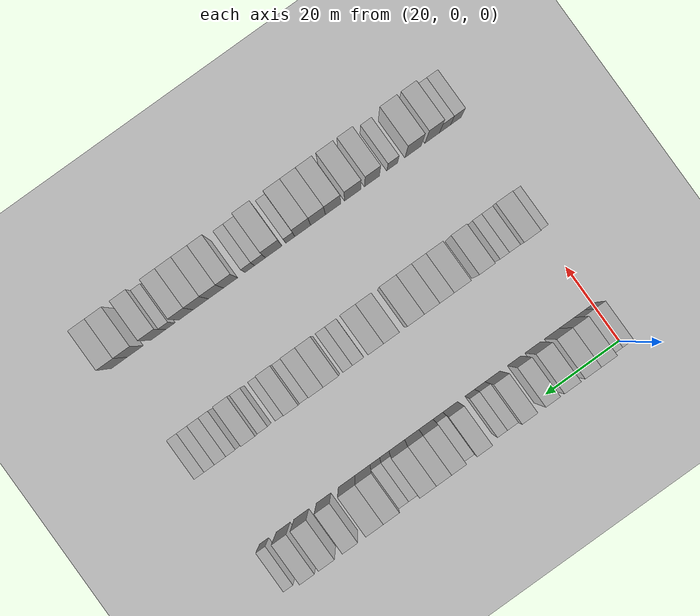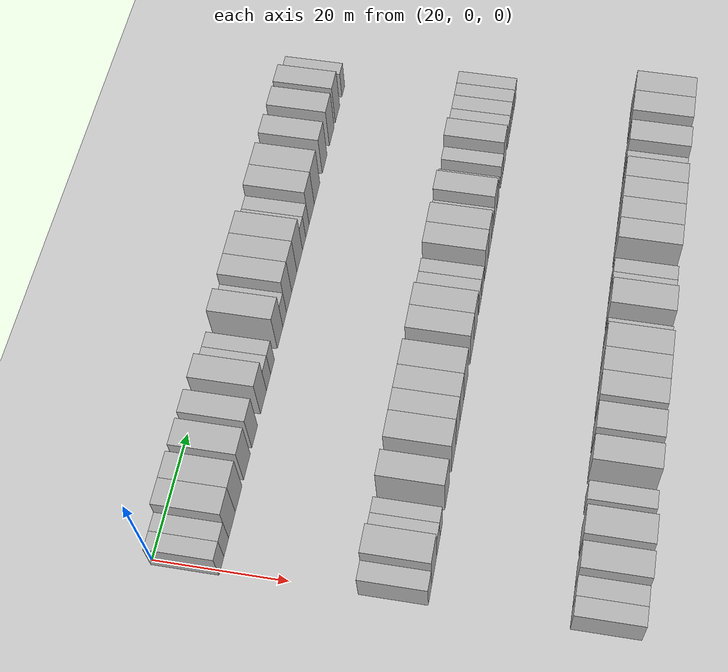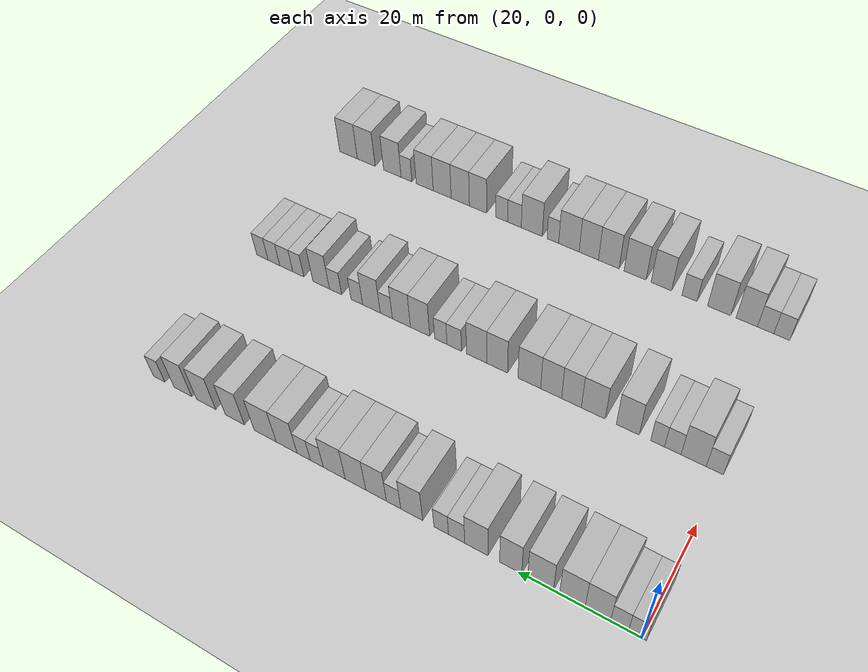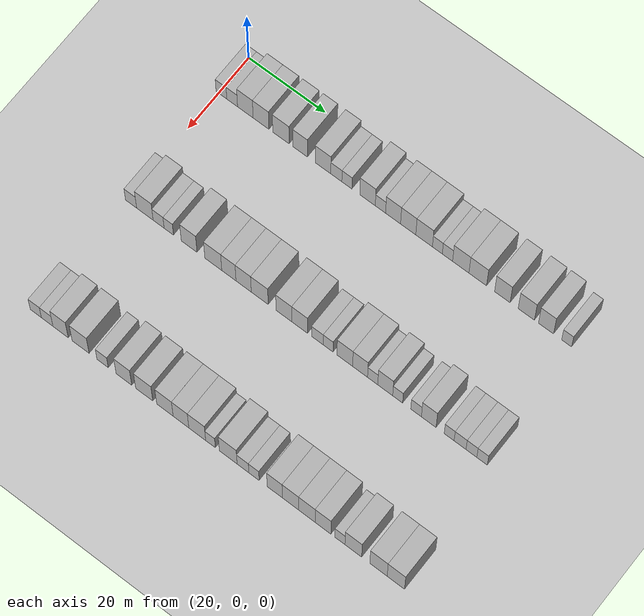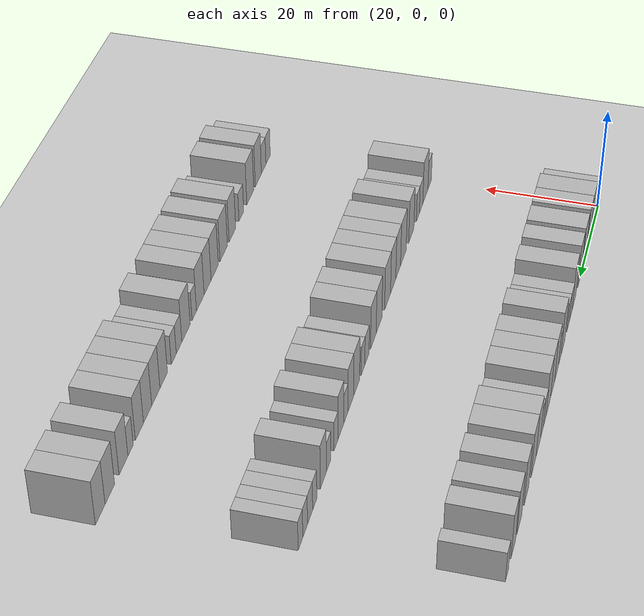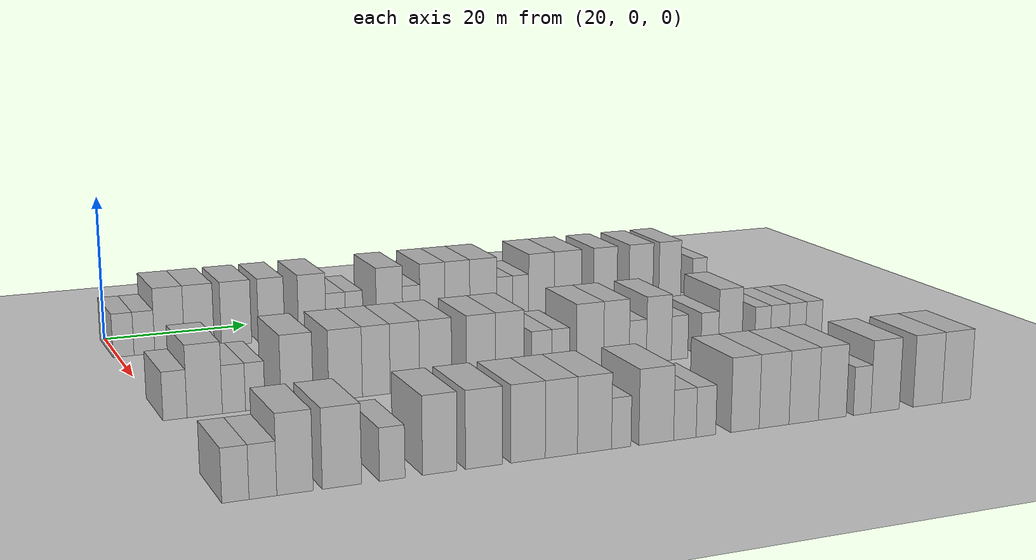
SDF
<sdf version="1.6">
 <world name="default">
  <include>
   <name>ground_plane_2</name>
   <uri>model://HANNAS_ground_plane</uri>
   <pose>100 0 0  0 0 0</pose>
  </include>
  <model name="building_72">
   <static>1</static>
   <pose>25.0000 0.7263 0 0.000000 0.000000 0.000000</pose>
   <link name="link">
    <pose>0 0 3.00 0 0 0</pose>
    <collision name="collision"><geometry><box><size>10.0000 2.8007 6.0000</size></box></geometry></collision>
    <visual name="visual">
     <cast_shadows>0</cast_shadows>
     <geometry><box><size>10.0000 2.8007 6.0000</size></box></geometry>
     <material>
      <script>
       <uri>model://HANNAS_wall/materials/scripts</uri>
       <uri>model://HANNAS_wall/materials/textures</uri>
       <name>vrc/HANNAS_wall</name>
      </script>
     </material>
    </visual>
   </link>
  </model>
  <model name="building_73">
   <static>1</static>
   <pose>25.0000 3.5335 0 0.000000 0.000000 0.000000</pose>
   <link name="link">
    <pose>0 0 3.00 0 0 0</pose>
    <collision name="collision"><geometry><box><size>10.0000 2.8138 6.0000</size></box></geometry></collision>
    <visual name="visual">
     <cast_shadows>0</cast_shadows>
     <geometry><box><size>10.0000 2.8138 6.0000</size></box></geometry>
     <material>
      <script>
       <uri>model://HANNAS_wall/materials/scripts</uri>
       <uri>model://HANNAS_wall/materials/textures</uri>
       <name>vrc/HANNAS_wall</name>
      </script>
     </material>
    </visual>
   </link>
  </model>
  <model name="building_74">
   <static>1</static>
   <pose>25.0000 6.9694 0 0.000000 0.000000 0.000000</pose>
   <link name="link">
    <pose>0 0 4.50 0 0 0</pose>
    <collision name="collision"><geometry><box><size>10.0000 4.0579 9.0000</size></box></geometry></collision>
    <visual name="visual">
     <cast_shadows>0</cast_shadows>
     <geometry><box><size>10.0000 4.0579 9.0000</size></box></geometry>
     <material>
      <script>
       <uri>model://HANNAS_wall/materials/scripts</uri>
       <uri>model://HANNAS_wall/materials/textures</uri>
       <name>vrc/HANNAS_wall</name>
      </script>
     </material>
    </visual>
   </link>
  </model>
  <model name="building_75">
   <static>1</static>
   <pose>25.0000 11.0529 0 0.000000 0.000000 0.000000</pose>
   <link name="link">
    <pose>0 0 4.50 0 0 0</pose>
    <collision name="collision"><geometry><box><size>10.0000 4.1092 9.0000</size></box></geometry></collision>
    <visual name="visual">
     <cast_shadows>0</cast_shadows>
     <geometry><box><size>10.0000 4.1092 9.0000</size></box></geometry>
     <material>
      <script>
       <uri>model://HANNAS_wall/materials/scripts</uri>
       <uri>model://HANNAS_wall/materials/textures</uri>
       <name>vrc/HANNAS_wall</name>
      </script>
     </material>
    </visual>
   </link>
  </model>
  <model name="building_76">
   <static>1</static>
   <pose>25.0000 16.2269 0 0.000000 0.000000 0.000000</pose>
   <link name="link">
    <pose>0 0 4.50 0 0 0</pose>
    <collision name="collision"><geometry><box><size>10.0000 4.2388 9.0000</size></box></geometry></collision>
    <visual name="visual">
     <cast_shadows>0</cast_shadows>
     <geometry><box><size>10.0000 4.2388 9.0000</size></box></geometry>
     <material>
      <script>
       <uri>model://HANNAS_wall/materials/scripts</uri>
       <uri>model://HANNAS_wall/materials/textures</uri>
       <name>vrc/HANNAS_wall</name>
      </script>
     </material>
    </visual>
   </link>
  </model>
  <model name="building_77">
   <static>1</static>
   <pose>25.0000 21.2065 0 0.000000 0.000000 0.000000</pose>
   <link name="link">
    <pose>0 0 4.50 0 0 0</pose>
    <collision name="collision"><geometry><box><size>10.0000 3.7204 9.0000</size></box></geometry></collision>
    <visual name="visual">
     <cast_shadows>0</cast_shadows>
     <geometry><box><size>10.0000 3.7204 9.0000</size></box></geometry>
     <material>
      <script>
       <uri>model://HANNAS_wall/materials/scripts</uri>
       <uri>model://HANNAS_wall/materials/textures</uri>
       <name>vrc/HANNAS_wall</name>
      </script>
     </material>
    </visual>
   </link>
  </model>
  <model name="building_78">
   <static>1</static>
   <pose>25.0000 27.0637 0 0.000000 0.000000 0.000000</pose>
   <link name="link">
    <pose>0 0 4.50 0 0 0</pose>
    <collision name="collision"><geometry><box><size>10.0000 3.9941 9.0000</size></box></geometry></collision>
    <visual name="visual">
     <cast_shadows>0</cast_shadows>
     <geometry><box><size>10.0000 3.9941 9.0000</size></box></geometry>
     <material>
      <script>
       <uri>model://HANNAS_wall/materials/scripts</uri>
       <uri>model://HANNAS_wall/materials/textures</uri>
       <name>vrc/HANNAS_wall</name>
      </script>
     </material>
    </visual>
   </link>
  </model>
  <model name="building_79">
   <static>1</static>
   <pose>25.0000 30.4862 0 0.000000 0.000000 0.000000</pose>
   <link name="link">
    <pose>0 0 3.00 0 0 0</pose>
    <collision name="collision"><geometry><box><size>10.0000 2.8509 6.0000</size></box></geometry></collision>
    <visual name="visual">
     <cast_shadows>0</cast_shadows>
     <geometry><box><size>10.0000 2.8509 6.0000</size></box></geometry>
     <material>
      <script>
       <uri>model://HANNAS_wall/materials/scripts</uri>
       <uri>model://HANNAS_wall/materials/textures</uri>
       <name>vrc/HANNAS_wall</name>
      </script>
     </material>
    </visual>
   </link>
  </model>
  <model name="building_80">
   <static>1</static>
   <pose>25.0000 33.2006 0 0.000000 0.000000 0.000000</pose>
   <link name="link">
    <pose>0 0 3.00 0 0 0</pose>
    <collision name="collision"><geometry><box><size>10.0000 2.5778 6.0000</size></box></geometry></collision>
    <visual name="visual">
     <cast_shadows>0</cast_shadows>
     <geometry><box><size>10.0000 2.5778 6.0000</size></box></geometry>
     <material>
      <script>
       <uri>model://HANNAS_wall/materials/scripts</uri>
       <uri>model://HANNAS_wall/materials/textures</uri>
       <name>vrc/HANNAS_wall</name>
      </script>
     </material>
    </visual>
   </link>
  </model>
  <model name="building_81">
   <static>1</static>
   <pose>25.0000 38.4661 0 0.000000 0.000000 0.000000</pose>
   <link name="link">
    <pose>0 0 4.50 0 0 0</pose>
    <collision name="collision"><geometry><box><size>10.0000 3.9533 9.0000</size></box></geometry></collision>
    <visual name="visual">
     <cast_shadows>0</cast_shadows>
     <geometry><box><size>10.0000 3.9533 9.0000</size></box></geometry>
     <material>
      <script>
       <uri>model://HANNAS_wall/materials/scripts</uri>
       <uri>model://HANNAS_wall/materials/textures</uri>
       <name>vrc/HANNAS_wall</name>
      </script>
     </material>
    </visual>
   </link>
  </model>
  <model name="building_82">
   <static>1</static>
   <pose>25.0000 41.7570 0 0.000000 0.000000 0.000000</pose>
   <link name="link">
    <pose>0 0 3.00 0 0 0</pose>
    <collision name="collision"><geometry><box><size>10.0000 2.6285 6.0000</size></box></geometry></collision>
    <visual name="visual">
     <cast_shadows>0</cast_shadows>
     <geometry><box><size>10.0000 2.6285 6.0000</size></box></geometry>
     <material>
      <script>
       <uri>model://HANNAS_wall/materials/scripts</uri>
       <uri>model://HANNAS_wall/materials/textures</uri>
       <name>vrc/HANNAS_wall</name>
      </script>
     </material>
    </visual>
   </link>
  </model>
  <model name="building_83">
   <static>1</static>
   <pose>25.0000 44.9753 0 0.000000 0.000000 0.000000</pose>
   <link name="link">
    <pose>0 0 4.50 0 0 0</pose>
    <collision name="collision"><geometry><box><size>10.0000 3.8082 9.0000</size></box></geometry></collision>
    <visual name="visual">
     <cast_shadows>0</cast_shadows>
     <geometry><box><size>10.0000 3.8082 9.0000</size></box></geometry>
     <material>
      <script>
       <uri>model://HANNAS_wall/materials/scripts</uri>
       <uri>model://HANNAS_wall/materials/textures</uri>
       <name>vrc/HANNAS_wall</name>
      </script>
     </material>
    </visual>
   </link>
  </model>
  <model name="building_84">
   <static>1</static>
   <pose>25.0000 48.8112 0 0.000000 0.000000 0.000000</pose>
   <link name="link">
    <pose>0 0 4.50 0 0 0</pose>
    <collision name="collision"><geometry><box><size>10.0000 3.8636 9.0000</size></box></geometry></collision>
    <visual name="visual">
     <cast_shadows>0</cast_shadows>
     <geometry><box><size>10.0000 3.8636 9.0000</size></box></geometry>
     <material>
      <script>
       <uri>model://HANNAS_wall/materials/scripts</uri>
       <uri>model://HANNAS_wall/materials/textures</uri>
       <name>vrc/HANNAS_wall</name>
      </script>
     </material>
    </visual>
   </link>
  </model>
  <model name="building_85">
   <static>1</static>
   <pose>25.0000 52.8440 0 0.000000 0.000000 0.000000</pose>
   <link name="link">
    <pose>0 0 4.50 0 0 0</pose>
    <collision name="collision"><geometry><box><size>10.0000 4.2020 9.0000</size></box></geometry></collision>
    <visual name="visual">
     <cast_shadows>0</cast_shadows>
     <geometry><box><size>10.0000 4.2020 9.0000</size></box></geometry>
     <material>
      <script>
       <uri>model://HANNAS_wall/materials/scripts</uri>
       <uri>model://HANNAS_wall/materials/textures</uri>
       <name>vrc/HANNAS_wall</name>
      </script>
     </material>
    </visual>
   </link>
  </model>
  <model name="building_86">
   <static>1</static>
   <pose>25.0000 56.1912 0 0.000000 0.000000 0.000000</pose>
   <link name="link">
    <pose>0 0 3.00 0 0 0</pose>
    <collision name="collision"><geometry><box><size>10.0000 2.4923 6.0000</size></box></geometry></collision>
    <visual name="visual">
     <cast_shadows>0</cast_shadows>
     <geometry><box><size>10.0000 2.4923 6.0000</size></box></geometry>
     <material>
      <script>
       <uri>model://HANNAS_wall/materials/scripts</uri>
       <uri>model://HANNAS_wall/materials/textures</uri>
       <name>vrc/HANNAS_wall</name>
      </script>
     </material>
    </visual>
   </link>
  </model>
  <model name="building_87">
   <static>1</static>
   <pose>25.0000 58.7335 0 0.000000 0.000000 0.000000</pose>
   <link name="link">
    <pose>0 0 3.00 0 0 0</pose>
    <collision name="collision"><geometry><box><size>10.0000 2.5922 6.0000</size></box></geometry></collision>
    <visual name="visual">
     <cast_shadows>0</cast_shadows>
     <geometry><box><size>10.0000 2.5922 6.0000</size></box></geometry>
     <material>
      <script>
       <uri>model://HANNAS_wall/materials/scripts</uri>
       <uri>model://HANNAS_wall/materials/textures</uri>
       <name>vrc/HANNAS_wall</name>
      </script>
     </material>
    </visual>
   </link>
  </model>
  <model name="building_88">
   <static>1</static>
   <pose>25.0000 62.0854 0 0.000000 0.000000 0.000000</pose>
   <link name="link">
    <pose>0 0 4.50 0 0 0</pose>
    <collision name="collision"><geometry><box><size>10.0000 4.1117 9.0000</size></box></geometry></collision>
    <visual name="visual">
     <cast_shadows>0</cast_shadows>
     <geometry><box><size>10.0000 4.1117 9.0000</size></box></geometry>
     <material>
      <script>
       <uri>model://HANNAS_wall/materials/scripts</uri>
       <uri>model://HANNAS_wall/materials/textures</uri>
       <name>vrc/HANNAS_wall</name>
      </script>
     </material>
    </visual>
   </link>
  </model>
  <model name="building_89">
   <static>1</static>
   <pose>25.0000 66.3556 0 0.000000 0.000000 0.000000</pose>
   <link name="link">
    <pose>0 0 4.50 0 0 0</pose>
    <collision name="collision"><geometry><box><size>10.0000 4.4288 9.0000</size></box></geometry></collision>
    <visual name="visual">
     <cast_shadows>0</cast_shadows>
     <geometry><box><size>10.0000 4.4288 9.0000</size></box></geometry>
     <material>
      <script>
       <uri>model://HANNAS_wall/materials/scripts</uri>
       <uri>model://HANNAS_wall/materials/textures</uri>
       <name>vrc/HANNAS_wall</name>
      </script>
     </material>
    </visual>
   </link>
  </model>
  <model name="building_90">
   <static>1</static>
   <pose>25.0000 72.5190 0 0.000000 0.000000 0.000000</pose>
   <link name="link">
    <pose>0 0 4.50 0 0 0</pose>
    <collision name="collision"><geometry><box><size>10.0000 3.8980 9.0000</size></box></geometry></collision>
    <visual name="visual">
     <cast_shadows>0</cast_shadows>
     <geometry><box><size>10.0000 3.8980 9.0000</size></box></geometry>
     <material>
      <script>
       <uri>model://HANNAS_wall/materials/scripts</uri>
       <uri>model://HANNAS_wall/materials/textures</uri>
       <name>vrc/HANNAS_wall</name>
      </script>
     </material>
    </visual>
   </link>
  </model>
  <model name="building_91">
   <static>1</static>
   <pose>25.0000 78.4902 0 0.000000 0.000000 0.000000</pose>
   <link name="link">
    <pose>0 0 4.50 0 0 0</pose>
    <collision name="collision"><geometry><box><size>10.0000 4.0445 9.0000</size></box></geometry></collision>
    <visual name="visual">
     <cast_shadows>0</cast_shadows>
     <geometry><box><size>10.0000 4.0445 9.0000</size></box></geometry>
     <material>
      <script>
       <uri>model://HANNAS_wall/materials/scripts</uri>
       <uri>model://HANNAS_wall/materials/textures</uri>
       <name>vrc/HANNAS_wall</name>
      </script>
     </material>
    </visual>
   </link>
  </model>
  <model name="building_92">
   <static>1</static>
   <pose>25.0000 83.3860 0 0.000000 0.000000 0.000000</pose>
   <link name="link">
    <pose>0 0 4.50 0 0 0</pose>
    <collision name="collision"><geometry><box><size>10.0000 3.7471 9.0000</size></box></geometry></collision>
    <visual name="visual">
     <cast_shadows>0</cast_shadows>
     <geometry><box><size>10.0000 3.7471 9.0000</size></box></geometry>
     <material>
      <script>
       <uri>model://HANNAS_wall/materials/scripts</uri>
       <uri>model://HANNAS_wall/materials/textures</uri>
       <name>vrc/HANNAS_wall</name>
      </script>
     </material>
    </visual>
   </link>
  </model>
  <model name="building_93">
   <static>1</static>
   <pose>25.0000 88.4916 0 0.000000 0.000000 0.000000</pose>
   <link name="link">
    <pose>0 0 3.00 0 0 0</pose>
    <collision name="collision"><geometry><box><size>10.0000 2.4641 6.0000</size></box></geometry></collision>
    <visual name="visual">
     <cast_shadows>0</cast_shadows>
     <geometry><box><size>10.0000 2.4641 6.0000</size></box></geometry>
     <material>
      <script>
       <uri>model://HANNAS_wall/materials/scripts</uri>
       <uri>model://HANNAS_wall/materials/textures</uri>
       <name>vrc/HANNAS_wall</name>
      </script>
     </material>
    </visual>
   </link>
  </model>
  <model name="building_209">
   <static>1</static>
   <pose>55.0000 1.1675 0 0.000000 0.000000 0.000000</pose>
   <link name="link">
    <pose>0 0 3.00 0 0 0</pose>
    <collision name="collision"><geometry><box><size>10.0000 2.8977 6.0000</size></box></geometry></collision>
    <visual name="visual">
     <cast_shadows>0</cast_shadows>
     <geometry><box><size>10.0000 2.8977 6.0000</size></box></geometry>
     <material>
      <script>
       <uri>model://HANNAS_wall/materials/scripts</uri>
       <uri>model://HANNAS_wall/materials/textures</uri>
       <name>vrc/HANNAS_wall</name>
      </script>
     </material>
    </visual>
   </link>
  </model>
  <model name="building_210">
   <static>1</static>
   <pose>55.0000 4.7603 0 0.000000 0.000000 0.000000</pose>
   <link name="link">
    <pose>0 0 4.50 0 0 0</pose>
    <collision name="collision"><geometry><box><size>10.0000 4.2881 9.0000</size></box></geometry></collision>
    <visual name="visual">
     <cast_shadows>0</cast_shadows>
     <geometry><box><size>10.0000 4.2881 9.0000</size></box></geometry>
     <material>
      <script>
       <uri>model://HANNAS_wall/materials/scripts</uri>
       <uri>model://HANNAS_wall/materials/textures</uri>
       <name>vrc/HANNAS_wall</name>
      </script>
     </material>
    </visual>
   </link>
  </model>
  <model name="building_211">
   <static>1</static>
   <pose>55.0000 8.3292 0 0.000000 0.000000 0.000000</pose>
   <link name="link">
    <pose>0 0 3.00 0 0 0</pose>
    <collision name="collision"><geometry><box><size>10.0000 2.8497 6.0000</size></box></geometry></collision>
    <visual name="visual">
     <cast_shadows>0</cast_shadows>
     <geometry><box><size>10.0000 2.8497 6.0000</size></box></geometry>
     <material>
      <script>
       <uri>model://HANNAS_wall/materials/scripts</uri>
       <uri>model://HANNAS_wall/materials/textures</uri>
       <name>vrc/HANNAS_wall</name>
      </script>
     </material>
    </visual>
   </link>
  </model>
  <model name="building_212">
   <static>1</static>
   <pose>55.0000 10.9634 0 0.000000 0.000000 0.000000</pose>
   <link name="link">
    <pose>0 0 3.00 0 0 0</pose>
    <collision name="collision"><geometry><box><size>10.0000 2.4188 6.0000</size></box></geometry></collision>
    <visual name="visual">
     <cast_shadows>0</cast_shadows>
     <geometry><box><size>10.0000 2.4188 6.0000</size></box></geometry>
     <material>
      <script>
       <uri>model://HANNAS_wall/materials/scripts</uri>
       <uri>model://HANNAS_wall/materials/textures</uri>
       <name>vrc/HANNAS_wall</name>
      </script>
     </material>
    </visual>
   </link>
  </model>
  <model name="building_213">
   <static>1</static>
   <pose>55.0000 16.2072 0 0.000000 0.000000 0.000000</pose>
   <link name="link">
    <pose>0 0 4.50 0 0 0</pose>
    <collision name="collision"><geometry><box><size>10.0000 4.0687 9.0000</size></box></geometry></collision>
    <visual name="visual">
     <cast_shadows>0</cast_shadows>
     <geometry><box><size>10.0000 4.0687 9.0000</size></box></geometry>
     <material>
      <script>
       <uri>model://HANNAS_wall/materials/scripts</uri>
       <uri>model://HANNAS_wall/materials/textures</uri>
       <name>vrc/HANNAS_wall</name>
      </script>
     </material>
    </visual>
   </link>
  </model>
  <model name="building_214">
   <static>1</static>
   <pose>55.0000 22.4107 0 0.000000 0.000000 0.000000</pose>
   <link name="link">
    <pose>0 0 4.50 0 0 0</pose>
    <collision name="collision"><geometry><box><size>10.0000 4.3383 9.0000</size></box></geometry></collision>
    <visual name="visual">
     <cast_shadows>0</cast_shadows>
     <geometry><box><size>10.0000 4.3383 9.0000</size></box></geometry>
     <material>
      <script>
       <uri>model://HANNAS_wall/materials/scripts</uri>
       <uri>model://HANNAS_wall/materials/textures</uri>
       <name>vrc/HANNAS_wall</name>
      </script>
     </material>
    </visual>
   </link>
  </model>
  <model name="building_215">
   <static>1</static>
   <pose>55.0000 26.4033 0 0.000000 0.000000 0.000000</pose>
   <link name="link">
    <pose>0 0 4.50 0 0 0</pose>
    <collision name="collision"><geometry><box><size>10.0000 3.6468 9.0000</size></box></geometry></collision>
    <visual name="visual">
     <cast_shadows>0</cast_shadows>
     <geometry><box><size>10.0000 3.6468 9.0000</size></box></geometry>
     <material>
      <script>
       <uri>model://HANNAS_wall/materials/scripts</uri>
       <uri>model://HANNAS_wall/materials/textures</uri>
       <name>vrc/HANNAS_wall</name>
      </script>
     </material>
    </visual>
   </link>
  </model>
  <model name="building_216">
   <static>1</static>
   <pose>55.0000 30.1789 0 0.000000 0.000000 0.000000</pose>
   <link name="link">
    <pose>0 0 4.50 0 0 0</pose>
    <collision name="collision"><geometry><box><size>10.0000 3.9045 9.0000</size></box></geometry></collision>
    <visual name="visual">
     <cast_shadows>0</cast_shadows>
     <geometry><box><size>10.0000 3.9045 9.0000</size></box></geometry>
     <material>
      <script>
       <uri>model://HANNAS_wall/materials/scripts</uri>
       <uri>model://HANNAS_wall/materials/textures</uri>
       <name>vrc/HANNAS_wall</name>
      </script>
     </material>
    </visual>
   </link>
  </model>
  <model name="building_217">
   <static>1</static>
   <pose>55.0000 34.2883 0 0.000000 0.000000 0.000000</pose>
   <link name="link">
    <pose>0 0 4.50 0 0 0</pose>
    <collision name="collision"><geometry><box><size>10.0000 4.3143 9.0000</size></box></geometry></collision>
    <visual name="visual">
     <cast_shadows>0</cast_shadows>
     <geometry><box><size>10.0000 4.3143 9.0000</size></box></geometry>
     <material>
      <script>
       <uri>model://HANNAS_wall/materials/scripts</uri>
       <uri>model://HANNAS_wall/materials/textures</uri>
       <name>vrc/HANNAS_wall</name>
      </script>
     </material>
    </visual>
   </link>
  </model>
  <model name="building_218">
   <static>1</static>
   <pose>55.0000 40.4533 0 0.000000 0.000000 0.000000</pose>
   <link name="link">
    <pose>0 0 4.50 0 0 0</pose>
    <collision name="collision"><geometry><box><size>10.0000 4.0157 9.0000</size></box></geometry></collision>
    <visual name="visual">
     <cast_shadows>0</cast_shadows>
     <geometry><box><size>10.0000 4.0157 9.0000</size></box></geometry>
     <material>
      <script>
       <uri>model://HANNAS_wall/materials/scripts</uri>
       <uri>model://HANNAS_wall/materials/textures</uri>
       <name>vrc/HANNAS_wall</name>
      </script>
     </material>
    </visual>
   </link>
  </model>
  <model name="building_219">
   <static>1</static>
   <pose>55.0000 44.4444 0 0.000000 0.000000 0.000000</pose>
   <link name="link">
    <pose>0 0 4.50 0 0 0</pose>
    <collision name="collision"><geometry><box><size>10.0000 3.9667 9.0000</size></box></geometry></collision>
    <visual name="visual">
     <cast_shadows>0</cast_shadows>
     <geometry><box><size>10.0000 3.9667 9.0000</size></box></geometry>
     <material>
      <script>
       <uri>model://HANNAS_wall/materials/scripts</uri>
       <uri>model://HANNAS_wall/materials/textures</uri>
       <name>vrc/HANNAS_wall</name>
      </script>
     </material>
    </visual>
   </link>
  </model>
  <model name="building_220">
   <static>1</static>
   <pose>55.0000 48.8894 0 0.000000 0.000000 0.000000</pose>
   <link name="link">
    <pose>0 0 3.00 0 0 0</pose>
    <collision name="collision"><geometry><box><size>10.0000 2.9233 6.0000</size></box></geometry></collision>
    <visual name="visual">
     <cast_shadows>0</cast_shadows>
     <geometry><box><size>10.0000 2.9233 6.0000</size></box></geometry>
     <material>
      <script>
       <uri>model://HANNAS_wall/materials/scripts</uri>
       <uri>model://HANNAS_wall/materials/textures</uri>
       <name>vrc/HANNAS_wall</name>
      </script>
     </material>
    </visual>
   </link>
  </model>
  <model name="building_221">
   <static>1</static>
   <pose>55.0000 51.5944 0 0.000000 0.000000 0.000000</pose>
   <link name="link">
    <pose>0 0 3.00 0 0 0</pose>
    <collision name="collision"><geometry><box><size>10.0000 2.4867 6.0000</size></box></geometry></collision>
    <visual name="visual">
     <cast_shadows>0</cast_shadows>
     <geometry><box><size>10.0000 2.4867 6.0000</size></box></geometry>
     <material>
      <script>
       <uri>model://HANNAS_wall/materials/scripts</uri>
       <uri>model://HANNAS_wall/materials/textures</uri>
       <name>vrc/HANNAS_wall</name>
      </script>
     </material>
    </visual>
   </link>
  </model>
  <model name="building_222">
   <static>1</static>
   <pose>55.0000 55.8043 0 0.000000 0.000000 0.000000</pose>
   <link name="link">
    <pose>0 0 4.50 0 0 0</pose>
    <collision name="collision"><geometry><box><size>10.0000 3.9330 9.0000</size></box></geometry></collision>
    <visual name="visual">
     <cast_shadows>0</cast_shadows>
     <geometry><box><size>10.0000 3.9330 9.0000</size></box></geometry>
     <material>
      <script>
       <uri>model://HANNAS_wall/materials/scripts</uri>
       <uri>model://HANNAS_wall/materials/textures</uri>
       <name>vrc/HANNAS_wall</name>
      </script>
     </material>
    </visual>
   </link>
  </model>
  <model name="building_223">
   <static>1</static>
   <pose>55.0000 59.6422 0 0.000000 0.000000 0.000000</pose>
   <link name="link">
    <pose>0 0 4.50 0 0 0</pose>
    <collision name="collision"><geometry><box><size>10.0000 3.7430 9.0000</size></box></geometry></collision>
    <visual name="visual">
     <cast_shadows>0</cast_shadows>
     <geometry><box><size>10.0000 3.7430 9.0000</size></box></geometry>
     <material>
      <script>
       <uri>model://HANNAS_wall/materials/scripts</uri>
       <uri>model://HANNAS_wall/materials/textures</uri>
       <name>vrc/HANNAS_wall</name>
      </script>
     </material>
    </visual>
   </link>
  </model>
  <model name="building_224">
   <static>1</static>
   <pose>55.0000 62.7873 0 0.000000 0.000000 0.000000</pose>
   <link name="link">
    <pose>0 0 3.00 0 0 0</pose>
    <collision name="collision"><geometry><box><size>10.0000 2.5471 6.0000</size></box></geometry></collision>
    <visual name="visual">
     <cast_shadows>0</cast_shadows>
     <geometry><box><size>10.0000 2.5471 6.0000</size></box></geometry>
     <material>
      <script>
       <uri>model://HANNAS_wall/materials/scripts</uri>
       <uri>model://HANNAS_wall/materials/textures</uri>
       <name>vrc/HANNAS_wall</name>
      </script>
     </material>
    </visual>
   </link>
  </model>
  <model name="building_225">
   <static>1</static>
   <pose>55.0000 65.9283 0 0.000000 0.000000 0.000000</pose>
   <link name="link">
    <pose>0 0 4.50 0 0 0</pose>
    <collision name="collision"><geometry><box><size>10.0000 3.7349 9.0000</size></box></geometry></collision>
    <visual name="visual">
     <cast_shadows>0</cast_shadows>
     <geometry><box><size>10.0000 3.7349 9.0000</size></box></geometry>
     <material>
      <script>
       <uri>model://HANNAS_wall/materials/scripts</uri>
       <uri>model://HANNAS_wall/materials/textures</uri>
       <name>vrc/HANNAS_wall</name>
      </script>
     </material>
    </visual>
   </link>
  </model>
  <model name="building_226">
   <static>1</static>
   <pose>55.0000 69.0328 0 0.000000 0.000000 0.000000</pose>
   <link name="link">
    <pose>0 0 3.00 0 0 0</pose>
    <collision name="collision"><geometry><box><size>10.0000 2.4740 6.0000</size></box></geometry></collision>
    <visual name="visual">
     <cast_shadows>0</cast_shadows>
     <geometry><box><size>10.0000 2.4740 6.0000</size></box></geometry>
     <material>
      <script>
       <uri>model://HANNAS_wall/materials/scripts</uri>
       <uri>model://HANNAS_wall/materials/textures</uri>
       <name>vrc/HANNAS_wall</name>
      </script>
     </material>
    </visual>
   </link>
  </model>
  <model name="building_227">
   <static>1</static>
   <pose>55.0000 73.5978 0 0.000000 0.000000 0.000000</pose>
   <link name="link">
    <pose>0 0 3.00 0 0 0</pose>
    <collision name="collision"><geometry><box><size>10.0000 2.6561 6.0000</size></box></geometry></collision>
    <visual name="visual">
     <cast_shadows>0</cast_shadows>
     <geometry><box><size>10.0000 2.6561 6.0000</size></box></geometry>
     <material>
      <script>
       <uri>model://HANNAS_wall/materials/scripts</uri>
       <uri>model://HANNAS_wall/materials/textures</uri>
       <name>vrc/HANNAS_wall</name>
      </script>
     </material>
    </visual>
   </link>
  </model>
  <model name="building_228">
   <static>1</static>
   <pose>55.0000 76.7475 0 0.000000 0.000000 0.000000</pose>
   <link name="link">
    <pose>0 0 4.50 0 0 0</pose>
    <collision name="collision"><geometry><box><size>10.0000 3.6431 9.0000</size></box></geometry></collision>
    <visual name="visual">
     <cast_shadows>0</cast_shadows>
     <geometry><box><size>10.0000 3.6431 9.0000</size></box></geometry>
     <material>
      <script>
       <uri>model://HANNAS_wall/materials/scripts</uri>
       <uri>model://HANNAS_wall/materials/textures</uri>
       <name>vrc/HANNAS_wall</name>
      </script>
     </material>
    </visual>
   </link>
  </model>
  <model name="building_229">
   <static>1</static>
   <pose>55.0000 81.7977 0 0.000000 0.000000 0.000000</pose>
   <link name="link">
    <pose>0 0 3.00 0 0 0</pose>
    <collision name="collision"><geometry><box><size>10.0000 2.4574 6.0000</size></box></geometry></collision>
    <visual name="visual">
     <cast_shadows>0</cast_shadows>
     <geometry><box><size>10.0000 2.4574 6.0000</size></box></geometry>
     <material>
      <script>
       <uri>model://HANNAS_wall/materials/scripts</uri>
       <uri>model://HANNAS_wall/materials/textures</uri>
       <name>vrc/HANNAS_wall</name>
      </script>
     </material>
    </visual>
   </link>
  </model>
  <model name="building_230">
   <static>1</static>
   <pose>55.0000 84.4944 0 0.000000 0.000000 0.000000</pose>
   <link name="link">
    <pose>0 0 3.00 0 0 0</pose>
    <collision name="collision"><geometry><box><size>10.0000 2.9361 6.0000</size></box></geometry></collision>
    <visual name="visual">
     <cast_shadows>0</cast_shadows>
     <geometry><box><size>10.0000 2.9361 6.0000</size></box></geometry>
     <material>
      <script>
       <uri>model://HANNAS_wall/materials/scripts</uri>
       <uri>model://HANNAS_wall/materials/textures</uri>
       <name>vrc/HANNAS_wall</name>
      </script>
     </material>
    </visual>
   </link>
  </model>
  <model name="building_231">
   <static>1</static>
   <pose>55.0000 87.2919 0 0.000000 0.000000 0.000000</pose>
   <link name="link">
    <pose>0 0 3.00 0 0 0</pose>
    <collision name="collision"><geometry><box><size>10.0000 2.6589 6.0000</size></box></geometry></collision>
    <visual name="visual">
     <cast_shadows>0</cast_shadows>
     <geometry><box><size>10.0000 2.6589 6.0000</size></box></geometry>
     <material>
      <script>
       <uri>model://HANNAS_wall/materials/scripts</uri>
       <uri>model://HANNAS_wall/materials/textures</uri>
       <name>vrc/HANNAS_wall</name>
      </script>
     </material>
    </visual>
   </link>
  </model>
  <model name="building_232">
   <static>1</static>
   <pose>55.0000 89.9107 0 0.000000 0.000000 0.000000</pose>
   <link name="link">
    <pose>0 0 3.00 0 0 0</pose>
    <collision name="collision"><geometry><box><size>10.0000 2.5786 6.0000</size></box></geometry></collision>
    <visual name="visual">
     <cast_shadows>0</cast_shadows>
     <geometry><box><size>10.0000 2.5786 6.0000</size></box></geometry>
     <material>
      <script>
       <uri>model://HANNAS_wall/materials/scripts</uri>
       <uri>model://HANNAS_wall/materials/textures</uri>
       <name>vrc/HANNAS_wall</name>
      </script>
     </material>
    </visual>
   </link>
  </model>
  <model name="building_349">
   <static>1</static>
   <pose>85.0000 0.9436 0 0.000000 0.000000 0.000000</pose>
   <link name="link">
    <pose>0 0 3.00 0 0 0</pose>
    <collision name="collision"><geometry><box><size>10.0000 2.8858 6.0000</size></box></geometry></collision>
    <visual name="visual">
     <cast_shadows>0</cast_shadows>
     <geometry><box><size>10.0000 2.8858 6.0000</size></box></geometry>
     <material>
      <script>
       <uri>model://HANNAS_wall/materials/scripts</uri>
       <uri>model://HANNAS_wall/materials/textures</uri>
       <name>vrc/HANNAS_wall</name>
      </script>
     </material>
    </visual>
   </link>
  </model>
  <model name="building_350">
   <static>1</static>
   <pose>85.0000 3.8776 0 0.000000 0.000000 0.000000</pose>
   <link name="link">
    <pose>0 0 3.00 0 0 0</pose>
    <collision name="collision"><geometry><box><size>10.0000 2.9823 6.0000</size></box></geometry></collision>
    <visual name="visual">
     <cast_shadows>0</cast_shadows>
     <geometry><box><size>10.0000 2.9823 6.0000</size></box></geometry>
     <material>
      <script>
       <uri>model://HANNAS_wall/materials/scripts</uri>
       <uri>model://HANNAS_wall/materials/textures</uri>
       <name>vrc/HANNAS_wall</name>
      </script>
     </material>
    </visual>
   </link>
  </model>
  <model name="building_351">
   <static>1</static>
   <pose>85.0000 7.3408 0 0.000000 0.000000 0.000000</pose>
   <link name="link">
    <pose>0 0 4.50 0 0 0</pose>
    <collision name="collision"><geometry><box><size>10.0000 3.9442 9.0000</size></box></geometry></collision>
    <visual name="visual">
     <cast_shadows>0</cast_shadows>
     <geometry><box><size>10.0000 3.9442 9.0000</size></box></geometry>
     <material>
      <script>
       <uri>model://HANNAS_wall/materials/scripts</uri>
       <uri>model://HANNAS_wall/materials/textures</uri>
       <name>vrc/HANNAS_wall</name>
      </script>
     </material>
    </visual>
   </link>
  </model>
  <model name="building_352">
   <static>1</static>
   <pose>85.0000 12.4968 0 0.000000 0.000000 0.000000</pose>
   <link name="link">
    <pose>0 0 4.50 0 0 0</pose>
    <collision name="collision"><geometry><box><size>10.0000 4.3676 9.0000</size></box></geometry></collision>
    <visual name="visual">
     <cast_shadows>0</cast_shadows>
     <geometry><box><size>10.0000 4.3676 9.0000</size></box></geometry>
     <material>
      <script>
       <uri>model://HANNAS_wall/materials/scripts</uri>
       <uri>model://HANNAS_wall/materials/textures</uri>
       <name>vrc/HANNAS_wall</name>
      </script>
     </material>
    </visual>
   </link>
  </model>
  <model name="building_353">
   <static>1</static>
   <pose>85.0000 18.1312 0 0.000000 0.000000 0.000000</pose>
   <link name="link">
    <pose>0 0 3.00 0 0 0</pose>
    <collision name="collision"><geometry><box><size>10.0000 2.9012 6.0000</size></box></geometry></collision>
    <visual name="visual">
     <cast_shadows>0</cast_shadows>
     <geometry><box><size>10.0000 2.9012 6.0000</size></box></geometry>
     <material>
      <script>
       <uri>model://HANNAS_wall/materials/scripts</uri>
       <uri>model://HANNAS_wall/materials/textures</uri>
       <name>vrc/HANNAS_wall</name>
      </script>
     </material>
    </visual>
   </link>
  </model>
  <model name="building_354">
   <static>1</static>
   <pose>85.0000 23.5787 0 0.000000 0.000000 0.000000</pose>
   <link name="link">
    <pose>0 0 4.50 0 0 0</pose>
    <collision name="collision"><geometry><box><size>10.0000 3.9939 9.0000</size></box></geometry></collision>
    <visual name="visual">
     <cast_shadows>0</cast_shadows>
     <geometry><box><size>10.0000 3.9939 9.0000</size></box></geometry>
     <material>
      <script>
       <uri>model://HANNAS_wall/materials/scripts</uri>
       <uri>model://HANNAS_wall/materials/textures</uri>
       <name>vrc/HANNAS_wall</name>
      </script>
     </material>
    </visual>
   </link>
  </model>
  <model name="building_355">
   <static>1</static>
   <pose>85.0000 28.7573 0 0.000000 0.000000 0.000000</pose>
   <link name="link">
    <pose>0 0 4.50 0 0 0</pose>
    <collision name="collision"><geometry><box><size>10.0000 4.3632 9.0000</size></box></geometry></collision>
    <visual name="visual">
     <cast_shadows>0</cast_shadows>
     <geometry><box><size>10.0000 4.3632 9.0000</size></box></geometry>
     <material>
      <script>
       <uri>model://HANNAS_wall/materials/scripts</uri>
       <uri>model://HANNAS_wall/materials/textures</uri>
       <name>vrc/HANNAS_wall</name>
      </script>
     </material>
    </visual>
   </link>
  </model>
  <model name="building_356">
   <static>1</static>
   <pose>85.0000 34.0190 0 0.000000 0.000000 0.000000</pose>
   <link name="link">
    <pose>0 0 4.50 0 0 0</pose>
    <collision name="collision"><geometry><box><size>10.0000 4.1603 9.0000</size></box></geometry></collision>
    <visual name="visual">
     <cast_shadows>0</cast_shadows>
     <geometry><box><size>10.0000 4.1603 9.0000</size></box></geometry>
     <material>
      <script>
       <uri>model://HANNAS_wall/materials/scripts</uri>
       <uri>model://HANNAS_wall/materials/textures</uri>
       <name>vrc/HANNAS_wall</name>
      </script>
     </material>
    </visual>
   </link>
  </model>
  <model name="building_357">
   <static>1</static>
   <pose>85.0000 38.0761 0 0.000000 0.000000 0.000000</pose>
   <link name="link">
    <pose>0 0 4.50 0 0 0</pose>
    <collision name="collision"><geometry><box><size>10.0000 3.9537 9.0000</size></box></geometry></collision>
    <visual name="visual">
     <cast_shadows>0</cast_shadows>
     <geometry><box><size>10.0000 3.9537 9.0000</size></box></geometry>
     <material>
      <script>
       <uri>model://HANNAS_wall/materials/scripts</uri>
       <uri>model://HANNAS_wall/materials/textures</uri>
       <name>vrc/HANNAS_wall</name>
      </script>
     </material>
    </visual>
   </link>
  </model>
  <model name="building_358">
   <static>1</static>
   <pose>85.0000 42.1756 0 0.000000 0.000000 0.000000</pose>
   <link name="link">
    <pose>0 0 4.50 0 0 0</pose>
    <collision name="collision"><geometry><box><size>10.0000 4.2455 9.0000</size></box></geometry></collision>
    <visual name="visual">
     <cast_shadows>0</cast_shadows>
     <geometry><box><size>10.0000 4.2455 9.0000</size></box></geometry>
     <material>
      <script>
       <uri>model://HANNAS_wall/materials/scripts</uri>
       <uri>model://HANNAS_wall/materials/textures</uri>
       <name>vrc/HANNAS_wall</name>
      </script>
     </material>
    </visual>
   </link>
  </model>
  <model name="building_359">
   <static>1</static>
   <pose>85.0000 45.5203 0 0.000000 0.000000 0.000000</pose>
   <link name="link">
    <pose>0 0 3.00 0 0 0</pose>
    <collision name="collision"><geometry><box><size>10.0000 2.4439 6.0000</size></box></geometry></collision>
    <visual name="visual">
     <cast_shadows>0</cast_shadows>
     <geometry><box><size>10.0000 2.4439 6.0000</size></box></geometry>
     <material>
      <script>
       <uri>model://HANNAS_wall/materials/scripts</uri>
       <uri>model://HANNAS_wall/materials/textures</uri>
       <name>vrc/HANNAS_wall</name>
      </script>
     </material>
    </visual>
   </link>
  </model>
  <model name="building_360">
   <static>1</static>
   <pose>85.0000 49.9741 0 0.000000 0.000000 0.000000</pose>
   <link name="link">
    <pose>0 0 4.50 0 0 0</pose>
    <collision name="collision"><geometry><box><size>10.0000 4.4637 9.0000</size></box></geometry></collision>
    <visual name="visual">
     <cast_shadows>0</cast_shadows>
     <geometry><box><size>10.0000 4.4637 9.0000</size></box></geometry>
     <material>
      <script>
       <uri>model://HANNAS_wall/materials/scripts</uri>
       <uri>model://HANNAS_wall/materials/textures</uri>
       <name>vrc/HANNAS_wall</name>
      </script>
     </material>
    </visual>
   </link>
  </model>
  <model name="building_361">
   <static>1</static>
   <pose>85.0000 53.6726 0 0.000000 0.000000 0.000000</pose>
   <link name="link">
    <pose>0 0 3.00 0 0 0</pose>
    <collision name="collision"><geometry><box><size>10.0000 2.9333 6.0000</size></box></geometry></collision>
    <visual name="visual">
     <cast_shadows>0</cast_shadows>
     <geometry><box><size>10.0000 2.9333 6.0000</size></box></geometry>
     <material>
      <script>
       <uri>model://HANNAS_wall/materials/scripts</uri>
       <uri>model://HANNAS_wall/materials/textures</uri>
       <name>vrc/HANNAS_wall</name>
      </script>
     </material>
    </visual>
   </link>
  </model>
  <model name="building_362">
   <static>1</static>
   <pose>85.0000 56.4243 0 0.000000 0.000000 0.000000</pose>
   <link name="link">
    <pose>0 0 3.00 0 0 0</pose>
    <collision name="collision"><geometry><box><size>10.0000 2.5701 6.0000</size></box></geometry></collision>
    <visual name="visual">
     <cast_shadows>0</cast_shadows>
     <geometry><box><size>10.0000 2.5701 6.0000</size></box></geometry>
     <material>
      <script>
       <uri>model://HANNAS_wall/materials/scripts</uri>
       <uri>model://HANNAS_wall/materials/textures</uri>
       <name>vrc/HANNAS_wall</name>
      </script>
     </material>
    </visual>
   </link>
  </model>
  <model name="building_363">
   <static>1</static>
   <pose>85.0000 61.6107 0 0.000000 0.000000 0.000000</pose>
   <link name="link">
    <pose>0 0 4.50 0 0 0</pose>
    <collision name="collision"><geometry><box><size>10.0000 3.8028 9.0000</size></box></geometry></collision>
    <visual name="visual">
     <cast_shadows>0</cast_shadows>
     <geometry><box><size>10.0000 3.8028 9.0000</size></box></geometry>
     <material>
      <script>
       <uri>model://HANNAS_wall/materials/scripts</uri>
       <uri>model://HANNAS_wall/materials/textures</uri>
       <name>vrc/HANNAS_wall</name>
      </script>
     </material>
    </visual>
   </link>
  </model>
  <model name="building_364">
   <static>1</static>
   <pose>85.0000 65.5435 0 0.000000 0.000000 0.000000</pose>
   <link name="link">
    <pose>0 0 4.50 0 0 0</pose>
    <collision name="collision"><geometry><box><size>10.0000 4.0628 9.0000</size></box></geometry></collision>
    <visual name="visual">
     <cast_shadows>0</cast_shadows>
     <geometry><box><size>10.0000 4.0628 9.0000</size></box></geometry>
     <material>
      <script>
       <uri>model://HANNAS_wall/materials/scripts</uri>
       <uri>model://HANNAS_wall/materials/textures</uri>
       <name>vrc/HANNAS_wall</name>
      </script>
     </material>
    </visual>
   </link>
  </model>
  <model name="building_365">
   <static>1</static>
   <pose>85.0000 69.6010 0 0.000000 0.000000 0.000000</pose>
   <link name="link">
    <pose>0 0 4.50 0 0 0</pose>
    <collision name="collision"><geometry><box><size>10.0000 4.0522 9.0000</size></box></geometry></collision>
    <visual name="visual">
     <cast_shadows>0</cast_shadows>
     <geometry><box><size>10.0000 4.0522 9.0000</size></box></geometry>
     <material>
      <script>
       <uri>model://HANNAS_wall/materials/scripts</uri>
       <uri>model://HANNAS_wall/materials/textures</uri>
       <name>vrc/HANNAS_wall</name>
      </script>
     </material>
    </visual>
   </link>
  </model>
  <model name="building_366">
   <static>1</static>
   <pose>85.0000 73.5721 0 0.000000 0.000000 0.000000</pose>
   <link name="link">
    <pose>0 0 4.50 0 0 0</pose>
    <collision name="collision"><geometry><box><size>10.0000 3.8902 9.0000</size></box></geometry></collision>
    <visual name="visual">
     <cast_shadows>0</cast_shadows>
     <geometry><box><size>10.0000 3.8902 9.0000</size></box></geometry>
     <material>
      <script>
       <uri>model://HANNAS_wall/materials/scripts</uri>
       <uri>model://HANNAS_wall/materials/textures</uri>
       <name>vrc/HANNAS_wall</name>
      </script>
     </material>
    </visual>
   </link>
  </model>
  <model name="building_367">
   <static>1</static>
   <pose>85.0000 77.7615 0 0.000000 0.000000 0.000000</pose>
   <link name="link">
    <pose>0 0 3.00 0 0 0</pose>
    <collision name="collision"><geometry><box><size>10.0000 2.4886 6.0000</size></box></geometry></collision>
    <visual name="visual">
     <cast_shadows>0</cast_shadows>
     <geometry><box><size>10.0000 2.4886 6.0000</size></box></geometry>
     <material>
      <script>
       <uri>model://HANNAS_wall/materials/scripts</uri>
       <uri>model://HANNAS_wall/materials/textures</uri>
       <name>vrc/HANNAS_wall</name>
      </script>
     </material>
    </visual>
   </link>
  </model>
  <model name="building_368">
   <static>1</static>
   <pose>85.0000 81.0541 0 0.000000 0.000000 0.000000</pose>
   <link name="link">
    <pose>0 0 4.50 0 0 0</pose>
    <collision name="collision"><geometry><box><size>10.0000 4.0967 9.0000</size></box></geometry></collision>
    <visual name="visual">
     <cast_shadows>0</cast_shadows>
     <geometry><box><size>10.0000 4.0967 9.0000</size></box></geometry>
     <material>
      <script>
       <uri>model://HANNAS_wall/materials/scripts</uri>
       <uri>model://HANNAS_wall/materials/textures</uri>
       <name>vrc/HANNAS_wall</name>
      </script>
     </material>
    </visual>
   </link>
  </model>
  <model name="building_369">
   <static>1</static>
   <pose>85.0000 87.2309 0 0.000000 0.000000 0.000000</pose>
   <link name="link">
    <pose>0 0 4.50 0 0 0</pose>
    <collision name="collision"><geometry><box><size>10.0000 4.2569 9.0000</size></box></geometry></collision>
    <visual name="visual">
     <cast_shadows>0</cast_shadows>
     <geometry><box><size>10.0000 4.2569 9.0000</size></box></geometry>
     <material>
      <script>
       <uri>model://HANNAS_wall/materials/scripts</uri>
       <uri>model://HANNAS_wall/materials/textures</uri>
       <name>vrc/HANNAS_wall</name>
      </script>
     </material>
    </visual>
   </link>
  </model>
  <model name="building_370">
   <static>1</static>
   <pose>85.0000 91.4818 0 0.000000 0.000000 0.000000</pose>
   <link name="link">
    <pose>0 0 4.50 0 0 0</pose>
    <collision name="collision"><geometry><box><size>10.0000 4.2449 9.0000</size></box></geometry></collision>
    <visual name="visual">
     <cast_shadows>0</cast_shadows>
     <geometry><box><size>10.0000 4.2449 9.0000</size></box></geometry>
     <material>
      <script>
       <uri>model://HANNAS_wall/materials/scripts</uri>
       <uri>model://HANNAS_wall/materials/textures</uri>
       <name>vrc/HANNAS_wall</name>
      </script>
     </material>
    </visual>
   </link>
  </model>
 </world>
</sdf>
